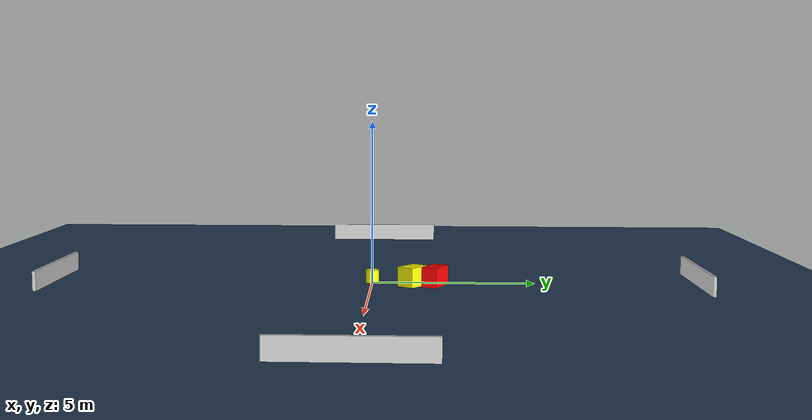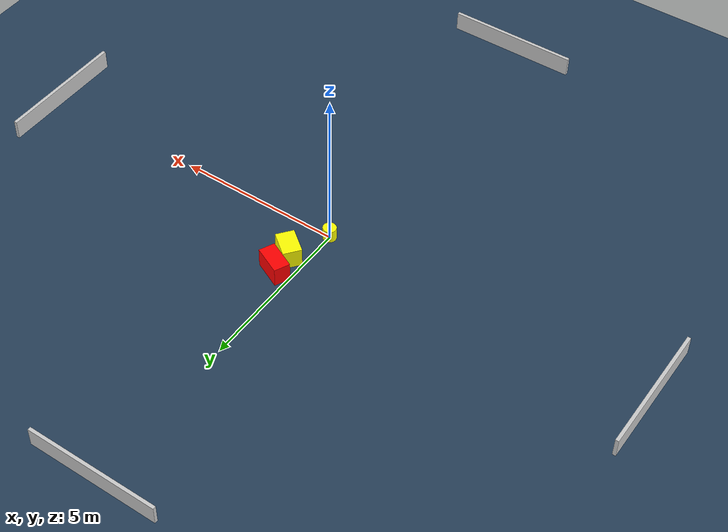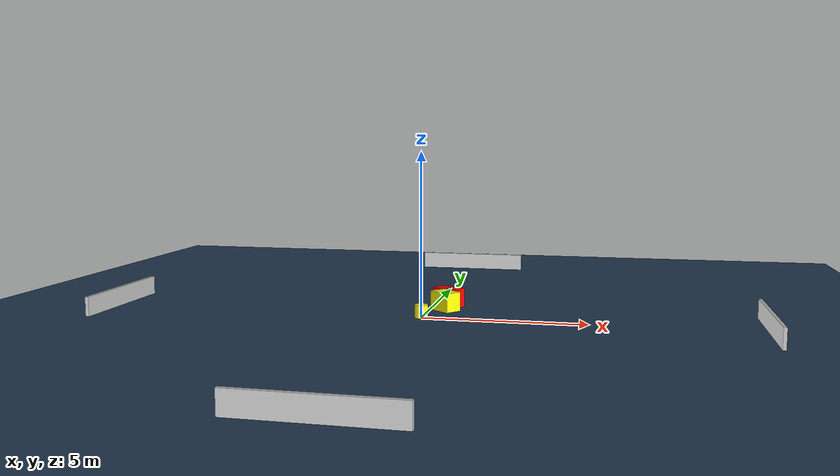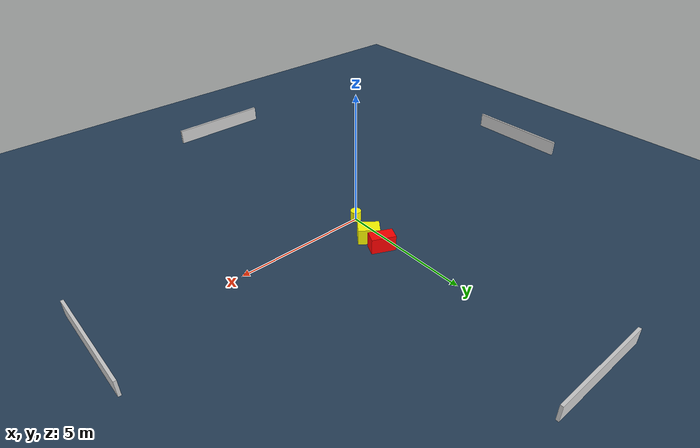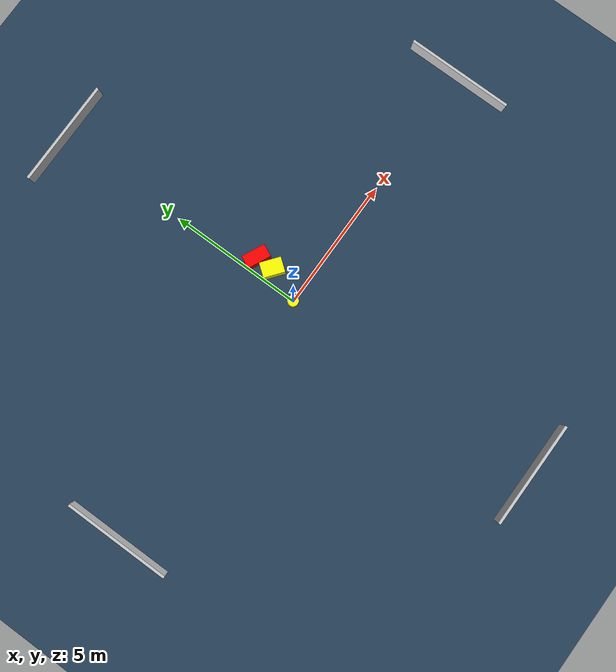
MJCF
<?xml version="1.0" ?>
<mujoco model="generated_environment">
  <option timestep="0.01" integrator="RK4" cone="elliptic"/>
  <default>
    <geom density="1"/>
  </default>
  <asset>
    <texture builtin="gradient" height="3072" name="skybox" rgb1="0.3 0.5 0.7" rgb2="0 0 0" type="skybox" width="512"/>
    <texture builtin="checker" height="300" name="groundplane" rgb1="0.2 0.3 0.4" rgb2="0.1 0.2 0.3" type="2d" width="300"/>
    <material name="groundplane" reflectance="0.2" texrepeat="5 5" texture="groundplane"/>
  </asset>
  <worldbody>
    <light dir="0 0 -1" directional="true" pos="0 0 1.5"/>
    <geom condim="3" friction="0.5 0.005 0.001" material="groundplane" name="floor" pos="0 0 0" size="0 0 0.05" type="plane"/>
    <body name="walls">
      <geom name="wall_1" condim="4" pos="-10.0 0.0 0.3" rgba="0.800000011920929 0.800000011920929 0.800000011920929 1.0" size="0.05 2.0 0.3" type="box"/>
      <geom name="wall_2" condim="4" pos="10.0 0.0 0.3" rgba="0.800000011920929 0.800000011920929 0.800000011920929 1.0" size="0.05 2.0 0.3" type="box"/>
      <geom name="wall_3" condim="4" pos="0.0 -10.0 0.3" rgba="0.800000011920929 0.800000011920929 0.800000011920929 1.0" size="2.0 0.05 0.3" type="box"/>
      <geom name="wall_4" condim="4" pos="0.0 10.0 0.3" rgba="0.800000011920929 0.800000011920929 0.800000011920929 1.0" size="2.0 0.05 0.3" type="box"/>
    </body>
    <body name="robot">
      <joint name="joint_x" type="slide" pos="0 0 0" axis="1 0 0"/>
      <joint name="joint_y" type="slide" pos="0 0 0" axis="0 1 0"/>
      <geom name="robot" type="cylinder" pos="0.0 0.0 0.2" size="0.2 0.2 0.0" mass="5.0" friction="1.0 0.005 0.0001" condim="4" rgba="1.0 1.0 0.0 1.0"/>
    </body>
    <body name="obstacle_1_movable">
      <geom name="obstacle_1_movable" condim="4" pos="0.49577201862455583 1.2597784282837274 0.3" euler="0 0 52.111209673600705" friction="0.0 0.005 0.001" rgba="1.0 1.0 0.0 1.0" size="0.2769765623922999 0.3937359525532644 0.3" type="box" mass="0.1"/>
      <joint type="free"/>
    </body>
    <body name="obstacle_2_static">
      <geom name="obstacle_2_static" condim="4" pos="0.4819144616380045 1.9335739161021896 0.3" euler="0 0 64.8383226109316" friction="0.0 0.005 0.001" rgba="1.0 0.0 0.0 1.0" size="0.24024305683813246 0.446499815693556 0.3" type="box"/>
    </body>
  </worldbody>
  <actuator>
    <motor name="actuator_x" joint="joint_x" gear="1" ctrlrange="-1 1"/>
    <motor name="actuator_y" joint="joint_y" gear="1" ctrlrange="-1 1"/>
  </actuator>
</mujoco>
